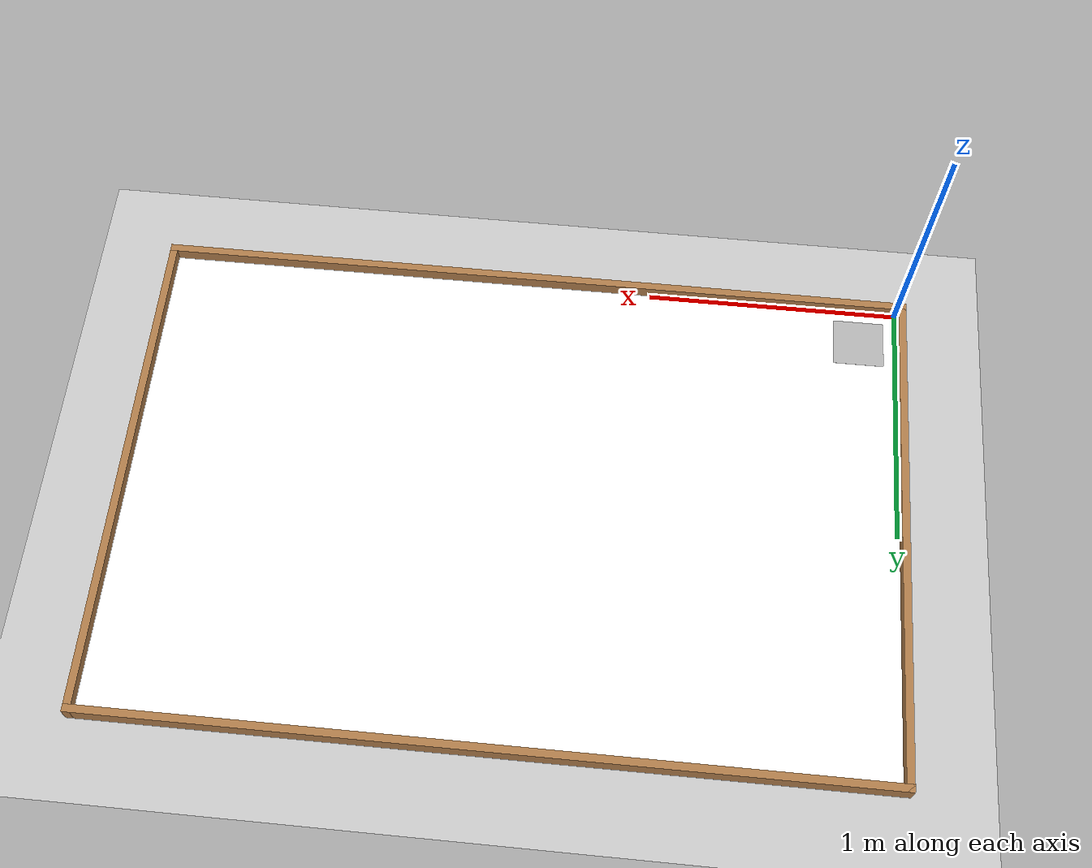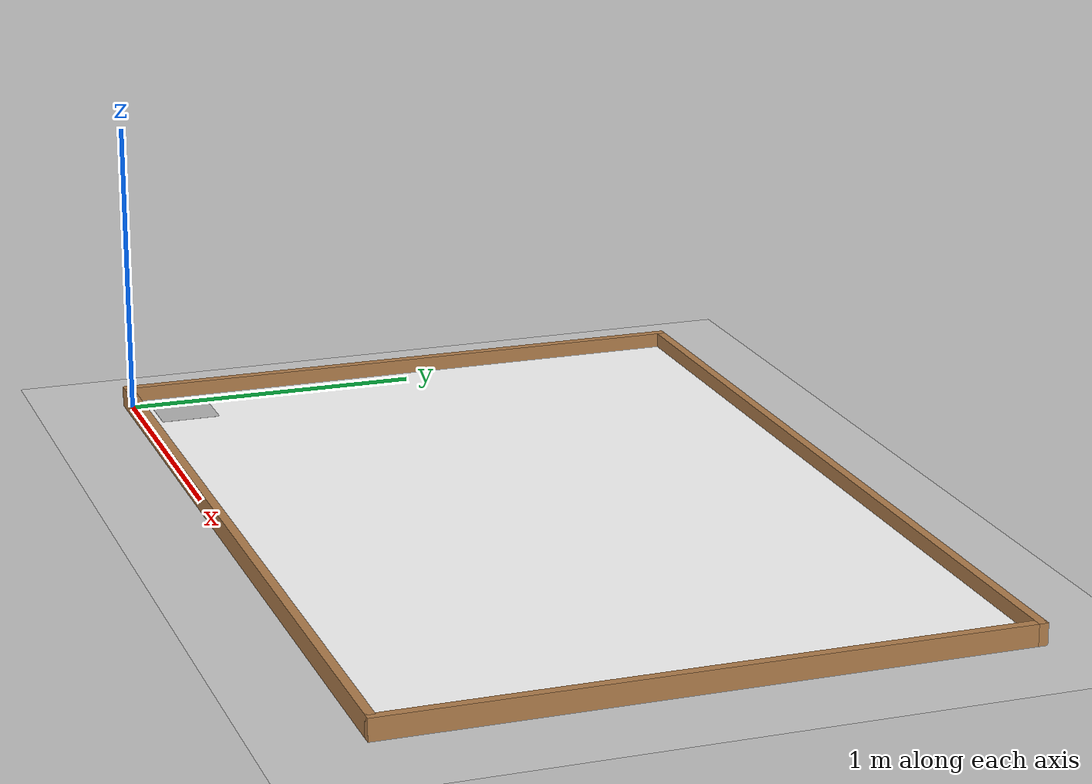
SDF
<sdf version="1.7">
 <world name="default">
  <light name="sun" type="directional">
   <pose>0 0 10 0 -0 0</pose>
   <diffuse>0.8 0.8 0.8 1</diffuse>
   <specular>0.2 0.2 0.2 1</specular>
   <attenuation>
    <range>1000</range>
    <constant>0.9</constant>
    <linear>0.01</linear>
    <quadratic>0.001</quadratic>
   </attenuation>
   <direction>-0.5 0.1 -0.9</direction>
   <spot><inner_angle>0</inner_angle><outer_angle>0</outer_angle><falloff>0</falloff></spot>
  </light>
  <model name="ground_plane">
   <static>1</static>
   <link name="link">
    <collision name="collision">
     <geometry><plane><normal>0 0 1</normal><size>100 100</size></plane></geometry>
     <surface><friction><ode><mu>100</mu><mu2>50</mu2></ode></friction></surface>
    </collision>
    <visual name="visual">
     <cast_shadows>0</cast_shadows>
     <geometry><plane><normal>0 0 1</normal><size>100 100</size></plane></geometry>
     <material>
      <script><uri>file://media/materials/scripts/gazebo.material</uri><name>Gazebo/Grey</name></script>
     </material>
    </visual>
   </link>
  </model>
  <gravity>0 0 -9.8</gravity>
  <magnetic_field>6e-06 2.3e-05 -4.2e-05</magnetic_field>
  <atmosphere type="adiabatic"/>
  <physics type="ode">
   <max_step_size>0.001</max_step_size>
   <real_time_factor>1</real_time_factor>
   <real_time_update_rate>1000</real_time_update_rate>
  </physics>
  <scene><ambient>0.4 0.4 0.4 1</ambient><background>0.7 0.7 0.7 1</background><shadows>1</shadows></scene>
  <model name="overhead_camera">
   <static>1</static>
   <pose>1.5 0 1.5 -0 1 1.57</pose>
   <link name="camera_link">
    <sensor name="camera_sensor" type="camera">
     <always_on>1</always_on>
     <update_rate>20</update_rate>
     <camera>
      <horizontal_fov>1.75</horizontal_fov>
      <image><width>1280</width><height>720</height><format>R8G8B8</format></image>
      <clip><near>0.1</near><far>100</far></clip>
     </camera>
     <visualize>1</visualize>
     <topic>/overhead_camera/image_raw</topic>
     <plugin name="gazebo_ros_camera" filename="libgazebo_ros_camera.so">
      <always_on>1</always_on>
      <update_rate>30</update_rate>
      <camera_name>overhead_camera</camera_name>
      <image_topic_name>image_raw</image_topic_name>
      <camera_info_topic_name>camera_info</camera_info_topic_name>
      <frame_name>overhead_camera_link</frame_name>
     </plugin>
    </sensor>
   </link>
  </model>
  <model name="aruco_marker_01">
   <static>1</static>
   <pose>0.15 0.15 0.02 0 -0 0</pose>
   <link name="link">
    <visual name="visual">
     <geometry><box><size>0.2 0.2 0.001</size></box></geometry>
     <material>
      <script>
       <uri>model://Building_Tablerov1/materials/scripts</uri>
       <uri>model://Building_Tablerov1/materials/textures</uri>
       <name>Aruco/Marker1</name>
      </script>
     </material>
    </visual>
   </link>
  </model>
  <model name="Building_Tablerov1">
   <static>1</static>
   <pose>1.47973 0.990701 0 0 0 -3.14</pose>
   <link name="Wall_0">
    <pose>-0 1 0.035 0 -0 0</pose>
    <visual name="Wall_0_Visual">
     <geometry><box><size>3.03 0.03 0.07</size></box></geometry>
     <material>
      <script><uri>file://media/materials/scripts/gazebo.material</uri><name>Gazebo/Wood</name></script>
     </material>
    </visual>
    <collision name="Wall_0_Collision"><geometry><box><size>3.03 0.03 0.07</size></box></geometry></collision>
   </link>
   <link name="Wall_1">
    <pose>1.5 -0 0.035 0 -0 -1.5708</pose>
    <visual name="Wall_1_Visual">
     <geometry><box><size>2.03 0.03 0.07</size></box></geometry>
     <material>
      <script><uri>file://media/materials/scripts/gazebo.material</uri><name>Gazebo/Wood</name></script>
     </material>
    </visual>
    <collision name="Wall_1_Collision"><geometry><box><size>2.03 0.03 0.07</size></box></geometry></collision>
   </link>
   <link name="Wall_2">
    <pose>0 -1 0.035 0 -0 3.14159</pose>
    <visual name="Wall_2_Visual">
     <geometry><box><size>3.03 0.03 0.07</size></box></geometry>
     <material>
      <script><uri>file://media/materials/scripts/gazebo.material</uri><name>Gazebo/Wood</name></script>
     </material>
    </visual>
    <collision name="Wall_2_Collision"><geometry><box><size>3.03 0.03 0.07</size></box></geometry></collision>
   </link>
   <link name="Wall_5">
    <pose>-1.5 0 0.035 0 -0 1.5708</pose>
    <visual name="Wall_5_Visual">
     <geometry><box><size>2.03 0.03 0.07</size></box></geometry>
     <material>
      <script><uri>file://media/materials/scripts/gazebo.material</uri><name>Gazebo/Wood</name></script>
     </material>
    </visual>
    <collision name="Wall_5_Collision"><geometry><box><size>2.03 0.03 0.07</size></box></geometry></collision>
   </link>
   <link name="link_0">
    <inertial>
     <mass>1</mass>
     <inertia>
      <ixx>0.166667</ixx>
      <ixy>0</ixy>
      <ixz>0</ixz>
      <iyy>0.166667</iyy>
      <iyz>0</iyz>
      <izz>0.166667</izz>
     </inertia>
    </inertial>
    <pose>0 0 0.01 0 -0 0</pose>
    <visual name="visual">
     <pose>0 0 0.005 0 -0 1.5708</pose>
     <geometry><box><size>2 3 0.01</size></box></geometry>
     <material>
      <script>
       <uri>model://Building_Tablerov1/materials/scripts</uri>
       <uri>model://Building_Tablerov1/materials/textures</uri>
       <name>Building_Tablero/ImagenSuelo</name>
      </script>
      <ambient>1 1 1 1</ambient>
      <shader type="pixel"/>
     </material>
    </visual>
    <collision name="collision">
     <pose>0 0 0 0 -0 1.5708</pose>
     <geometry><box><size>2 3 0.01</size></box></geometry>
     <surface><friction><ode><mu>100</mu><mu2>50</mu2></ode></friction></surface>
    </collision>
   </link>
  </model>
 </world>
</sdf>
